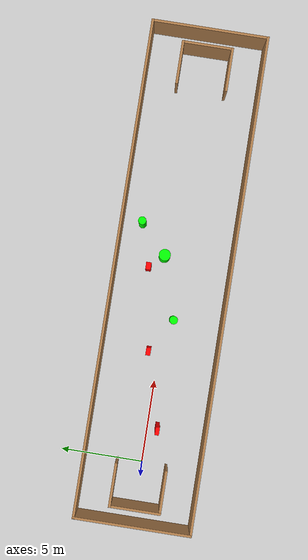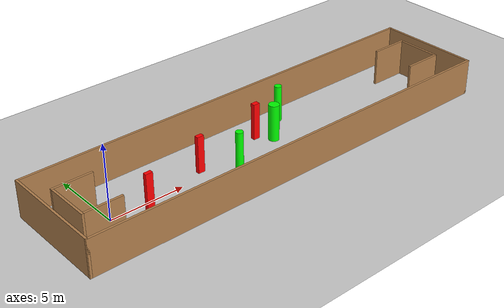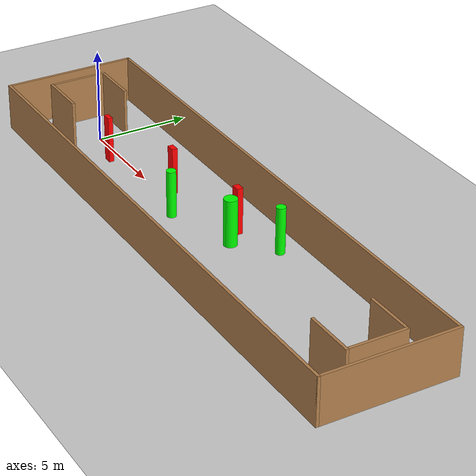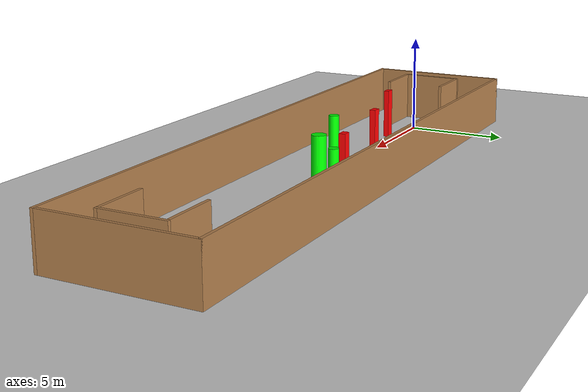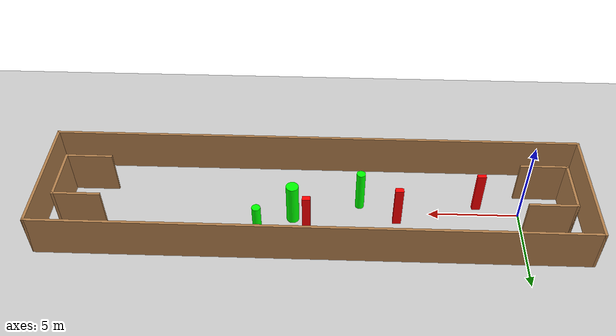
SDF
<sdf version="1.7">
 <world name="default">
  <light name="sun" type="directional">
   <pose>0 0 10 0 -0 0</pose>
   <diffuse>0.8 0.8 0.8 1</diffuse>
   <specular>0.2 0.2 0.2 1</specular>
   <attenuation>
    <range>1000</range>
    <constant>0.9</constant>
    <linear>0.01</linear>
    <quadratic>0.001</quadratic>
   </attenuation>
   <direction>-0.5 0.1 -0.9</direction>
   <spot><inner_angle>0</inner_angle><outer_angle>0</outer_angle><falloff>0</falloff></spot>
  </light>
  <model name="ground_plane">
   <static>1</static>
   <link name="link">
    <collision name="collision">
     <geometry><plane><normal>0 0 1</normal><size>100 100</size></plane></geometry>
     <surface>
      <contact><collide_bitmask>65535</collide_bitmask></contact>
      <friction><ode><mu>100</mu><mu2>50</mu2></ode></friction>
     </surface>
    </collision>
    <visual name="visual">
     <cast_shadows>0</cast_shadows>
     <geometry><plane><normal>0 0 1</normal><size>100 100</size></plane></geometry>
     <material>
      <script><uri>file://media/materials/scripts/gazebo.material</uri><name>Gazebo/Grey</name></script>
     </material>
    </visual>
   </link>
  </model>
  <gravity>0 0 -9.8</gravity>
  <magnetic_field>6e-06 2.3e-05 -4.2e-05</magnetic_field>
  <atmosphere type="adiabatic"/>
  <physics type="ode">
   <max_step_size>0.001</max_step_size>
   <real_time_factor>1</real_time_factor>
   <real_time_update_rate>1000</real_time_update_rate>
  </physics>
  <scene><ambient>0.4 0.4 0.4 1</ambient><background>0.7 0.7 0.7 1</background><shadows>1</shadows></scene>
  <spherical_coordinates>
   <surface_model>EARTH_WGS84</surface_model>
   <latitude_deg>0</latitude_deg>
   <longitude_deg>0</longitude_deg>
   <elevation>0</elevation>
   <heading_deg>0</heading_deg>
  </spherical_coordinates>
  <model name="my_base_walls">
   <link name="Wall_0">
    <collision name="Wall_0_Collision">
     <geometry><box><size>7.15 0.15 2.5</size></box></geometry>
     <pose>0 0 1.25 0 -0 0</pose>
    </collision>
    <visual name="Wall_0_Visual">
     <pose>0 0 1.25 0 -0 0</pose>
     <geometry><box><size>7.15 0.15 2.5</size></box></geometry>
     <material>
      <script><uri>file://media/materials/scripts/gazebo.material</uri><name>Gazebo/Wood</name></script>
      <ambient>1 1 1 1</ambient>
     </material>
     <meta><layer>0</layer></meta>
    </visual>
    <pose>-15 0 0 0 -0 1.5708</pose>
   </link>
   <link name="Wall_10">
    <collision name="Wall_10_Collision">
     <geometry><box><size>2.65 0.15 2.5</size></box></geometry>
     <pose>0 0 1.25 0 -0 0</pose>
    </collision>
    <visual name="Wall_10_Visual">
     <pose>0 0 1.25 0 -0 0</pose>
     <geometry><box><size>2.65 0.15 2.5</size></box></geometry>
     <material>
      <script><uri>file://media/materials/scripts/gazebo.material</uri><name>Gazebo/Wood</name></script>
      <ambient>1 1 1 1</ambient>
     </material>
     <meta><layer>0</layer></meta>
    </visual>
    <pose>-12.75 -1.5 0 0 -0 0</pose>
   </link>
   <link name="Wall_12">
    <collision name="Wall_12_Collision">
     <geometry><box><size>2.65 0.15 2.5</size></box></geometry>
     <pose>0 0 1.25 0 -0 0</pose>
    </collision>
    <visual name="Wall_12_Visual">
     <pose>0 0 1.25 0 -0 0</pose>
     <geometry><box><size>2.65 0.15 2.5</size></box></geometry>
     <material>
      <script><uri>file://media/materials/scripts/gazebo.material</uri><name>Gazebo/Wood</name></script>
      <ambient>1 1 1 1</ambient>
     </material>
     <meta><layer>0</layer></meta>
    </visual>
    <pose>-12.75 1.5 0 0 -0 0</pose>
   </link>
   <link name="Wall_14">
    <collision name="Wall_14_Collision">
     <geometry><box><size>3.15 0.15 2.5</size></box></geometry>
     <pose>0 0 1.25 0 -0 0</pose>
    </collision>
    <visual name="Wall_14_Visual">
     <pose>0 0 1.25 0 -0 0</pose>
     <geometry><box><size>3.15 0.15 2.5</size></box></geometry>
     <material>
      <script><uri>file://media/materials/scripts/gazebo.material</uri><name>Gazebo/Wood</name></script>
      <ambient>1 1 1 1</ambient>
     </material>
     <meta><layer>0</layer></meta>
    </visual>
    <pose>14 0 0 0 -0 -1.5708</pose>
   </link>
   <link name="Wall_15">
    <collision name="Wall_15_Collision">
     <geometry><box><size>2.65 0.15 2.5</size></box></geometry>
     <pose>0 0 1.25 0 -0 0</pose>
    </collision>
    <visual name="Wall_15_Visual">
     <pose>0 0 1.25 0 -0 0</pose>
     <geometry><box><size>2.65 0.15 2.5</size></box></geometry>
     <material>
      <script><uri>file://media/materials/scripts/gazebo.material</uri><name>Gazebo/Wood</name></script>
      <ambient>1 1 1 1</ambient>
     </material>
     <meta><layer>0</layer></meta>
    </visual>
    <pose>12.75 -1.5 0 0 -0 3.14159</pose>
   </link>
   <link name="Wall_17">
    <collision name="Wall_17_Collision">
     <geometry><box><size>2.65 0.15 2.5</size></box></geometry>
     <pose>0 0 1.25 0 -0 0</pose>
    </collision>
    <visual name="Wall_17_Visual">
     <pose>0 0 1.25 0 -0 0</pose>
     <geometry><box><size>2.65 0.15 2.5</size></box></geometry>
     <material>
      <script><uri>file://media/materials/scripts/gazebo.material</uri><name>Gazebo/Wood</name></script>
      <ambient>1 1 1 1</ambient>
     </material>
     <meta><layer>0</layer></meta>
    </visual>
    <pose>12.75 1.5 0 0 -0 3.14159</pose>
   </link>
   <link name="Wall_2">
    <collision name="Wall_2_Collision">
     <geometry><box><size>30.15 0.15 2.5</size></box></geometry>
     <pose>0 0 1.25 0 -0 0</pose>
    </collision>
    <visual name="Wall_2_Visual">
     <pose>0 0 1.25 0 -0 0</pose>
     <geometry><box><size>30.15 0.15 2.5</size></box></geometry>
     <material>
      <script><uri>file://media/materials/scripts/gazebo.material</uri><name>Gazebo/Wood</name></script>
      <ambient>1 1 1 1</ambient>
     </material>
     <meta><layer>0</layer></meta>
    </visual>
    <pose>-0 -3.5 0 0 -0 0</pose>
   </link>
   <link name="Wall_4">
    <collision name="Wall_4_Collision">
     <geometry><box><size>30.15 0.15 2.5</size></box></geometry>
     <pose>0 0 1.25 0 -0 0</pose>
    </collision>
    <visual name="Wall_4_Visual">
     <pose>0 0 1.25 0 -0 0</pose>
     <geometry><box><size>30.15 0.15 2.5</size></box></geometry>
     <material>
      <script><uri>file://media/materials/scripts/gazebo.material</uri><name>Gazebo/Wood</name></script>
      <ambient>1 1 1 1</ambient>
     </material>
     <meta><layer>0</layer></meta>
    </visual>
    <pose>-0 3.5 0 0 -0 0</pose>
   </link>
   <link name="Wall_6">
    <collision name="Wall_6_Collision">
     <geometry><box><size>7.15 0.15 2.5</size></box></geometry>
     <pose>0 0 1.25 0 -0 0</pose>
    </collision>
    <visual name="Wall_6_Visual">
     <pose>0 0 1.25 0 -0 0</pose>
     <geometry><box><size>7.15 0.15 2.5</size></box></geometry>
     <material>
      <script><uri>file://media/materials/scripts/gazebo.material</uri><name>Gazebo/Wood</name></script>
      <ambient>1 1 1 1</ambient>
     </material>
     <meta><layer>0</layer></meta>
    </visual>
    <pose>15 0 0 0 -0 -1.5708</pose>
   </link>
   <link name="Wall_9">
    <collision name="Wall_9_Collision">
     <geometry><box><size>3.15 0.15 2.5</size></box></geometry>
     <pose>0 0 1.25 0 -0 0</pose>
    </collision>
    <visual name="Wall_9_Visual">
     <pose>0 0 1.25 0 -0 0</pose>
     <geometry><box><size>3.15 0.15 2.5</size></box></geometry>
     <material>
      <script><uri>file://media/materials/scripts/gazebo.material</uri><name>Gazebo/Wood</name></script>
      <ambient>1 1 1 1</ambient>
     </material>
     <meta><layer>0</layer></meta>
    </visual>
    <pose>-14 0 0 0 -0 -1.5708</pose>
   </link>
   <static>1</static>
   <pose>11.5 0 0 0 -0 0</pose>
  </model>
  <model name="cylinder1">
   <static>1</static>
   <link name="link">
    <inertial>
     <mass>1</mass>
     <inertia><ixx>0.5</ixx><ixy>0</ixy><ixz>0</ixz><iyy>0.5</iyy><iyz>0</iyz><izz>1</izz></inertia>
    </inertial>
    <collision name="collision">
     <geometry><cylinder><radius>0.23995333507953198</radius><length>2.5</length></cylinder></geometry>
    </collision>
    <visual name="visual">
     <geometry><cylinder><radius>0.23995333507953198</radius><length>2.5</length></cylinder></geometry>
     <material>
      <ambient>0 1 0 1</ambient>
      <diffuse>0 1 0 1</diffuse>
      <specular>0.1 0.1 0.1 1</specular>
      <emissive>0 0 0 0</emissive>
     </material>
    </visual>
   </link>
   <pose>14.477930470862237 2.2304193782082056 1.25 0 0 0</pose>
  </model>
  <model name="cylinder2">
   <static>1</static>
   <link name="link">
    <inertial>
     <mass>1</mass>
     <inertia><ixx>0.5</ixx><ixy>0</ixy><ixz>0</ixz><iyy>0.5</iyy><iyz>0</iyz><izz>1</izz></inertia>
    </inertial>
    <collision name="collision">
     <geometry><cylinder><radius>0.34908657013217037</radius><length>2.5</length></cylinder></geometry>
    </collision>
    <visual name="visual">
     <geometry><cylinder><radius>0.34908657013217037</radius><length>2.5</length></cylinder></geometry>
     <material>
      <ambient>0 1 0 1</ambient>
      <diffuse>0 1 0 1</diffuse>
      <specular>0.1 0.1 0.1 1</specular>
      <emissive>0 0 0 0</emissive>
     </material>
    </visual>
   </link>
   <pose>12.661312952238617 0.5869859651646392 1.25 0 0 0</pose>
  </model>
  <model name="cylinder3">
   <static>1</static>
   <link name="link">
    <inertial>
     <mass>1</mass>
     <inertia><ixx>0.5</ixx><ixy>0</ixy><ixz>0</ixz><iyy>0.5</iyy><iyz>0</iyz><izz>1</izz></inertia>
    </inertial>
    <collision name="collision">
     <geometry><cylinder><radius>0.2482047829188643</radius><length>2.5</length></cylinder></geometry>
    </collision>
    <visual name="visual">
     <geometry><cylinder><radius>0.2482047829188643</radius><length>2.5</length></cylinder></geometry>
     <material>
      <ambient>0 1 0 1</ambient>
      <diffuse>0 1 0 1</diffuse>
      <specular>0.1 0.1 0.1 1</specular>
      <emissive>0 0 0 0</emissive>
     </material>
    </visual>
   </link>
   <pose>8.914863813679728 -0.5416160159991334 1.25 0 0 0</pose>
  </model>
  <model name="box1">
   <static>1</static>
   <link name="link">
    <inertial>
     <mass>1</mass>
     <inertia><ixx>0.083</ixx><ixy>0</ixy><ixz>0</ixz><iyy>0.083</iyy><iyz>0</iyz><izz>0.083</izz></inertia>
    </inertial>
    <collision name="collision">
     <geometry><box><size>0.4441990372584984 0.3111379308283374 2.5</size></box></geometry>
    </collision>
    <visual name="visual">
     <geometry><box><size>0.4441990372584984 0.3111379308283374 2.5</size></box></geometry>
     <material>
      <ambient>1 0 0 1</ambient>
      <diffuse>1 0 0 1</diffuse>
      <specular>0.1 0.1 0.1 1</specular>
      <emissive>0 0 0 0</emissive>
     </material>
    </visual>
    <sensor name="my_contact" type="contact">
     <contact><collision>box_collision</collision><topic>__default_topic__</topic></contact>
    </sensor>
   </link>
   <pose>11.867089522058091 1.4442939083125275 1.25 0 0 0</pose>
  </model>
  <model name="box2">
   <static>1</static>
   <link name="link">
    <inertial>
     <mass>1</mass>
     <inertia><ixx>0.083</ixx><ixy>0</ixy><ixz>0</ixz><iyy>0.083</iyy><iyz>0</iyz><izz>0.083</izz></inertia>
    </inertial>
    <collision name="collision">
     <geometry><box><size>0.4647477896781674 0.2848152981753022 2.5</size></box></geometry>
    </collision>
    <visual name="visual">
     <geometry><box><size>0.4647477896781674 0.2848152981753022 2.5</size></box></geometry>
     <material>
      <ambient>1 0 0 1</ambient>
      <diffuse>1 0 0 1</diffuse>
      <specular>0.1 0.1 0.1 1</specular>
      <emissive>0 0 0 0</emissive>
     </material>
    </visual>
    <sensor name="my_contact" type="contact">
     <contact><collision>box_collision</collision><topic>__default_topic__</topic></contact>
    </sensor>
   </link>
   <pose>6.849518918955008 0.6566516493764416 1.25 0 0 0</pose>
  </model>
  <model name="box3">
   <static>1</static>
   <link name="link">
    <inertial>
     <mass>1</mass>
     <inertia><ixx>0.083</ixx><ixy>0</ixy><ixz>0</ixz><iyy>0.083</iyy><iyz>0</iyz><izz>0.083</izz></inertia>
    </inertial>
    <collision name="collision">
     <geometry><box><size>0.48381545633763334 0.24961830538753774 2.5</size></box></geometry>
    </collision>
    <visual name="visual">
     <geometry><box><size>0.48381545633763334 0.24961830538753774 2.5</size></box></geometry>
     <material>
      <ambient>1 0 0 1</ambient>
      <diffuse>1 0 0 1</diffuse>
      <specular>0.1 0.1 0.1 1</specular>
      <emissive>0 0 0 0</emissive>
     </material>
    </visual>
    <sensor name="my_contact" type="contact">
     <contact><collision>box_collision</collision><topic>__default_topic__</topic></contact>
    </sensor>
   </link>
   <pose>2.294768117334071 -0.5983206980507054 1.25 0 0 0</pose>
  </model>
 </world>
</sdf>
